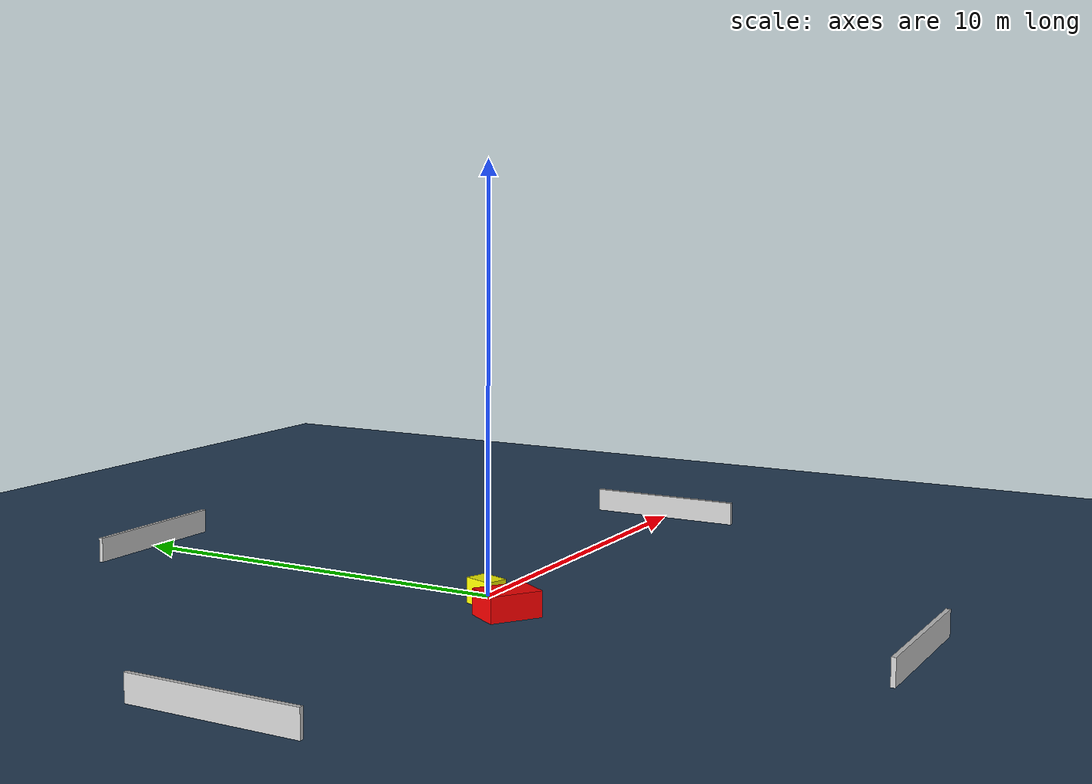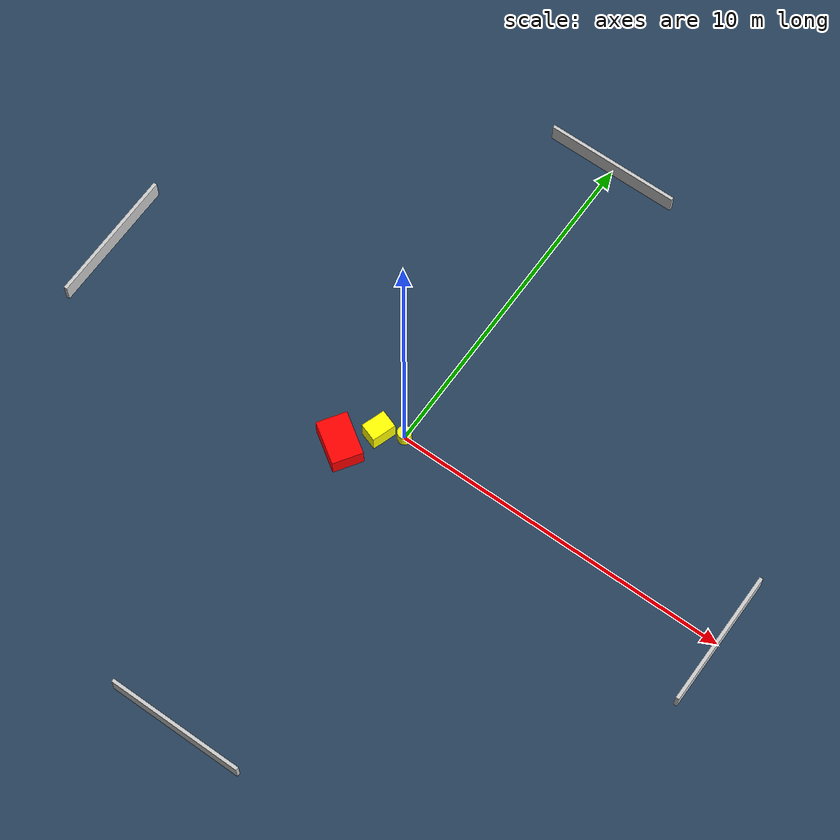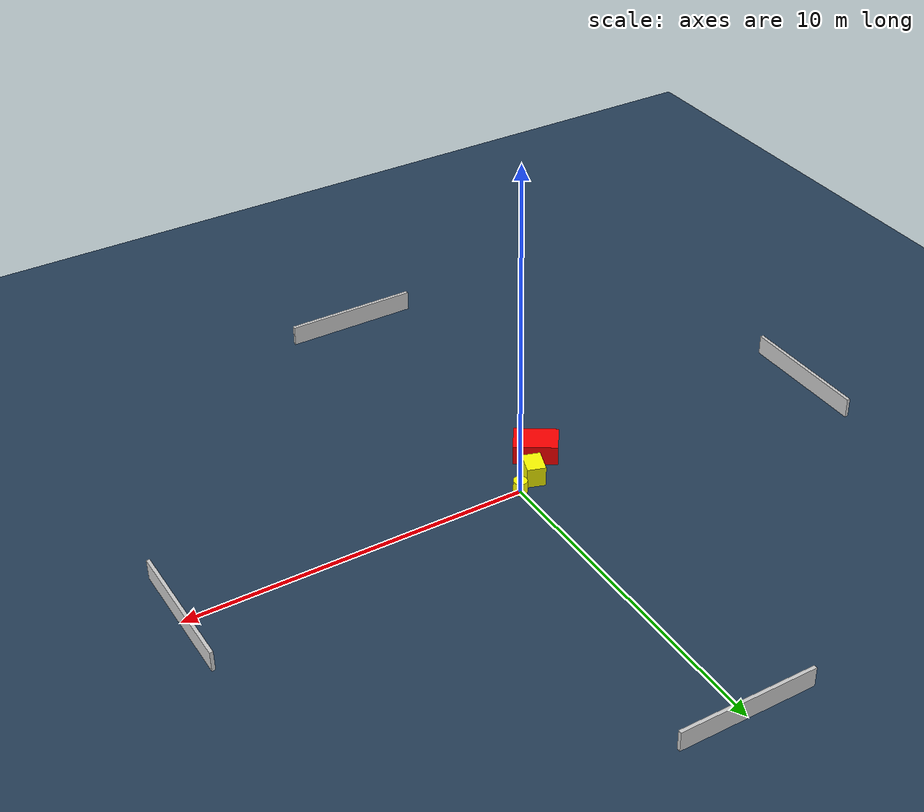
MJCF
<?xml version="1.0" ?>
<mujoco model="generated_environment">
  <option timestep="0.01" integrator="RK4" cone="elliptic"/>
  <default>
    <geom density="1"/>
  </default>
  <asset>
    <texture builtin="gradient" height="3072" name="skybox" rgb1="0.3 0.5 0.7" rgb2="0 0 0" type="skybox" width="512"/>
    <texture builtin="checker" height="300" name="groundplane" rgb1="0.2 0.3 0.4" rgb2="0.1 0.2 0.3" type="2d" width="300"/>
    <material name="groundplane" reflectance="0.2" texrepeat="5 5" texture="groundplane"/>
  </asset>
  <worldbody>
    <light dir="0 0 -1" directional="true" pos="0 0 1.5"/>
    <geom condim="3" friction="0.5 0.005 0.001" material="groundplane" name="floor" pos="0 0 0" size="0 0 0.05" type="plane"/>
    <body name="walls">
      <geom name="wall_1" condim="4" pos="-10.0 0.0 0.3" rgba="0.800000011920929 0.800000011920929 0.800000011920929 1.0" size="0.05 2.0 0.3" type="box"/>
      <geom name="wall_2" condim="4" pos="10.0 0.0 0.3" rgba="0.800000011920929 0.800000011920929 0.800000011920929 1.0" size="0.05 2.0 0.3" type="box"/>
      <geom name="wall_3" condim="4" pos="0.0 -10.0 0.3" rgba="0.800000011920929 0.800000011920929 0.800000011920929 1.0" size="2.0 0.05 0.3" type="box"/>
      <geom name="wall_4" condim="4" pos="0.0 10.0 0.3" rgba="0.800000011920929 0.800000011920929 0.800000011920929 1.0" size="2.0 0.05 0.3" type="box"/>
    </body>
    <body name="robot">
      <joint name="joint_x" type="slide" pos="0 0 0" axis="1 0 0"/>
      <joint name="joint_y" type="slide" pos="0 0 0" axis="0 1 0"/>
      <geom name="robot" type="cylinder" pos="0.0 0.0 0.2" size="0.2 0.2 0.0" mass="5.0" friction="1.0 0.005 0.0001" condim="4" rgba="1.0 1.0 0.0 1.0"/>
    </body>
    <body name="obstacle_1_movable">
      <geom name="obstacle_1_movable" condim="4" pos="-0.6301056045816532 -0.31326494615904277 0.3" euler="0 0 161.17906295778917" friction="0.0 0.005 0.001" rgba="1.0 1.0 0.0 1.0" size="0.2701274590407341 0.35891453701625514 0.3" type="box" mass="0.1"/>
      <joint type="free"/>
    </body>
    <body name="obstacle_2_static">
      <geom name="obstacle_2_static" condim="4" pos="-1.2675949969905569 -1.2038759733256994 0.3" euler="0 0 326.41059414965235" friction="0.0 0.005 0.001" rgba="1.0 0.0 0.0 1.0" size="0.6398680174742657 0.44729989773277035 0.3" type="box"/>
    </body>
  </worldbody>
  <actuator>
    <motor name="actuator_x" joint="joint_x" gear="1" ctrlrange="-1 1"/>
    <motor name="actuator_y" joint="joint_y" gear="1" ctrlrange="-1 1"/>
  </actuator>
</mujoco>
